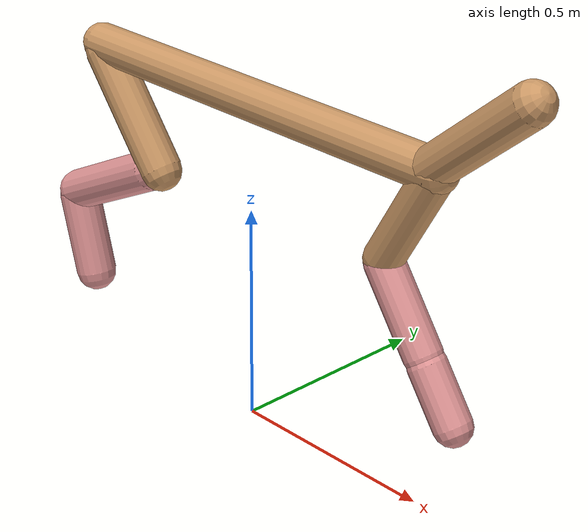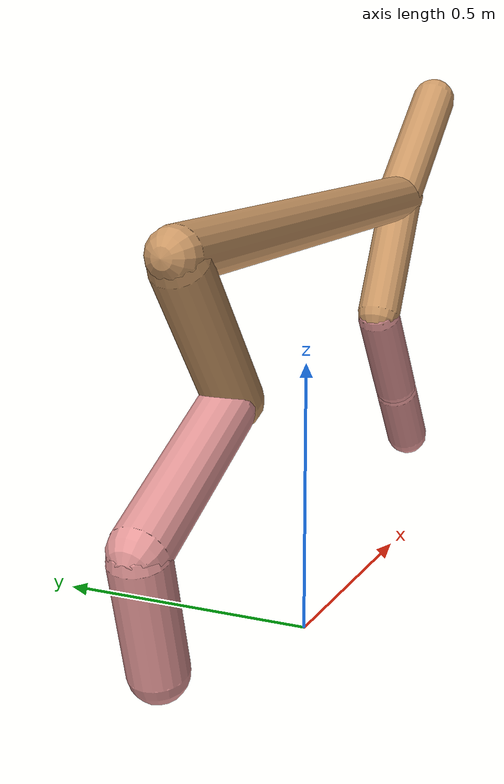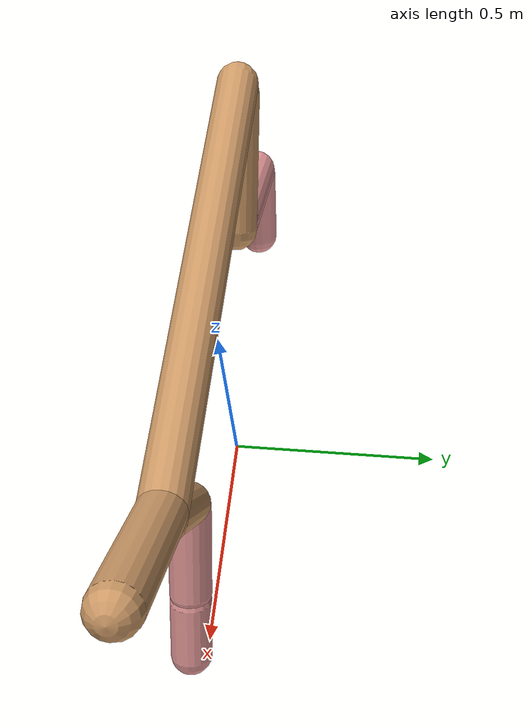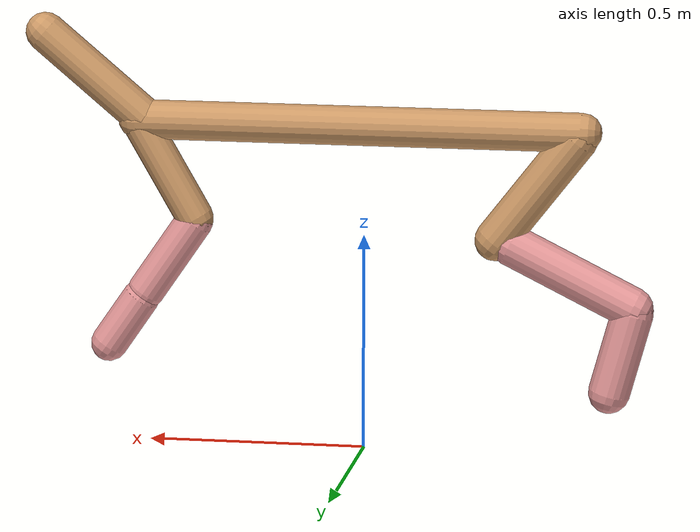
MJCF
<mujoco model="cheetah">
  <compiler angle="radian" coordinate="local" inertiafromgeom="true" settotalmass="14" />
  <default>
    <joint armature=".1" damping=".01" limited="true" solimplimit="0 .8 .03" solreflimit=".02 1" stiffness="8" />
    <geom conaffinity="0" condim="3" contype="1" friction="0.8 .1 .1" rgba="0.8 0.6 .4 1" solimp="0.0 0.8 0.01" solref="0.02 1" />
    <motor ctrllimited="true" ctrlrange="-1 1" />
  </default>
  <size nstack="300000" nuser_geom="1" />
  <option gravity="0 0 -9.81" timestep="0.01" />
  <worldbody>
    <body name="torso" pos="0.0 0.0 0.7546817586559872">
      <joint armature="0" axis="1 0 0" damping="0" limited="false" name="ignorex" pos="0 0 0" stiffness="0" type="slide" />
      <joint armature="0" axis="0 0 1" damping="0" limited="false" name="ignorez" pos="0 0 0" stiffness="0" type="slide" />
      <joint armature="0" axis="0 1 0" damping="0" limited="false" name="ignorey" pos="0 0 0" stiffness="0" type="hinge" />
      <geom fromto="-0.5 0.0 0.0 0.5233215899071568 0.0 0.0" name="torso" size="0.045534480048421505" type="capsule" />
      <geom axisangle="0 1 0 .87" name="head" pos="0.6233215899071568 0.0 0.1" size="0.045719523627980825 0.15" type="capsule" />

      <body name="bthigh" pos="-.5 0 0">
        <joint axis="0 1 0" damping="6" name="bthigh" pos="0 0 0" range="-.52 1.05" stiffness="240" type="hinge" />
        <geom axisangle="0 1 0 -3.8" name="bthigh" pos="0.10409687137104871 0.0 -0.13532593278236332" size="0.04807777694747886 0.15171936864840518" type="capsule" />
        <body name="bshin" pos="0.16819374274209742 0.0 -0.26065186556472664">
          <joint axis="0 1 0" damping="4.5" name="bshin" pos="0 0 0" range="-.785 .785" stiffness="180" type="hinge" />
          <geom axisangle="0 1 0 -2.03" name="bshin" pos="-0.14621722692291653 0.0 -0.07310861346145826" rgba="0.9 0.6 0.6 1" size="0.04807777694747886 0.15695107101559158" type="capsule" />
          <body name="bfoot" pos="-0.29243445384583305 0.0 -0.14621722692291653">
            <joint axis="0 1 0" damping="3" name="bfoot" pos="0 0 0" range="-.4 .785" stiffness="120" type="hinge" />
            <geom axisangle="0 1 0 -.27" name="bfoot" pos="0.03128706744357944 0.0 -0.10116151806757352" rgba="0.9 0.6 0.6 1" size="0.04807777694747886 0.09835600450310406" type="capsule" />
            <inertial mass="10" />
          </body>
        </body>
      </body>
      <body name="fthigh" pos="0.5233215899071568 0.0 0.0">
        <joint axis="0 1 0" damping="4.5" name="fthigh" pos="0 0 0" range="-1.5 0.8" stiffness="180" type="hinge" />
        <geom axisangle="0 1 0 .52" name="fthigh" pos="-0.0675753038896612 0.0 -0.11584337809656203" size="0.04277323948903792 0.12818786358509734" type="capsule" />
        <body name="fshin" pos="-0.1351506077793224 0.0 -0.23168675619312407">
          <joint axis="0 1 0" damping="3" name="fshin" pos="0 0 0" range="-1.2 1.1" stiffness="120" type="hinge" />
          <geom axisangle="0 1 0 -.6" name="fshin" pos="0.06275450523336833 0.0 -0.08689085340004844" rgba="0.9 0.6 0.6 1" size="0.04277323948903792 0.10216476345879938" type="capsule" />
          <body name="ffoot" pos="0.12550901046673665 0.0 -0.17378170680009689">
            <joint axis="0 1 0" damping="1.5" name="ffoot" pos="0 0 0" range="-3.1 -0.3" stiffness="60" type="hinge" />
            <geom axisangle="0 1 0 -.6" name="ffoot" pos="0.0436304214227396 0.0 -0.06786954443537273" rgba="0.9 0.6 0.6 1" size="0.04277323948903792 0.06746729662373545" type="capsule" />
            <inertial mass="10" />
          </body>
        </body>
      </body>
    </body>
  </worldbody>
  <actuator>
    <motor gear="120" joint="bthigh" name="bthigh" />
    <motor gear="90" joint="bshin" name="bshin" />
    <motor gear="60" joint="bfoot" name="bfoot" />
    <motor gear="120" joint="fthigh" name="fthigh" />
    <motor gear="60" joint="fshin" name="fshin" />
    <motor gear="30" joint="ffoot" name="ffoot" />
  </actuator>
</mujoco>
